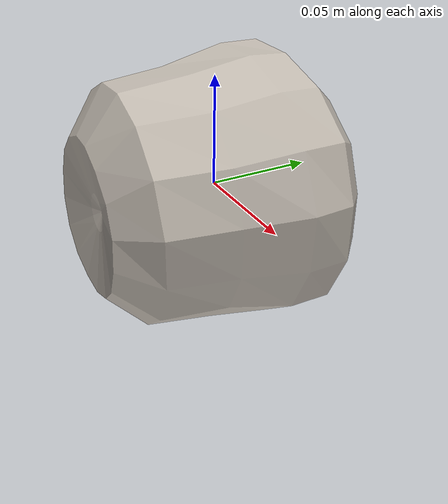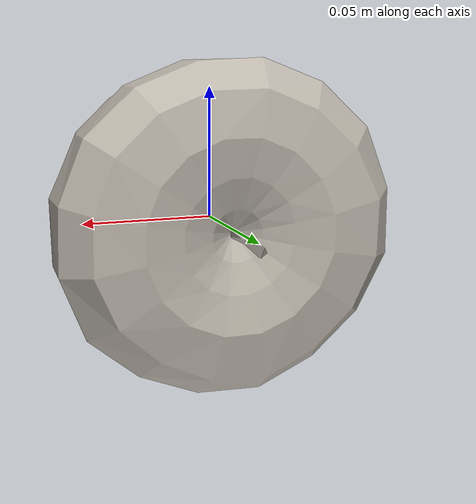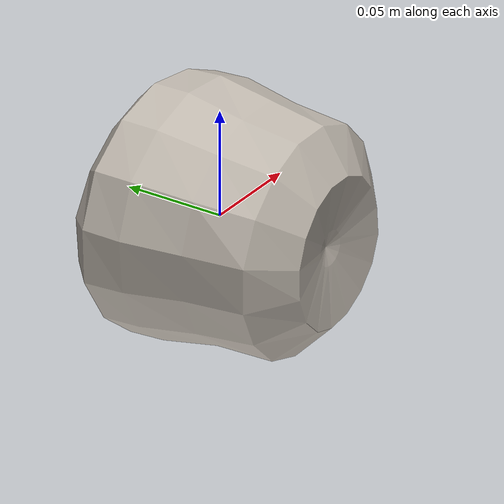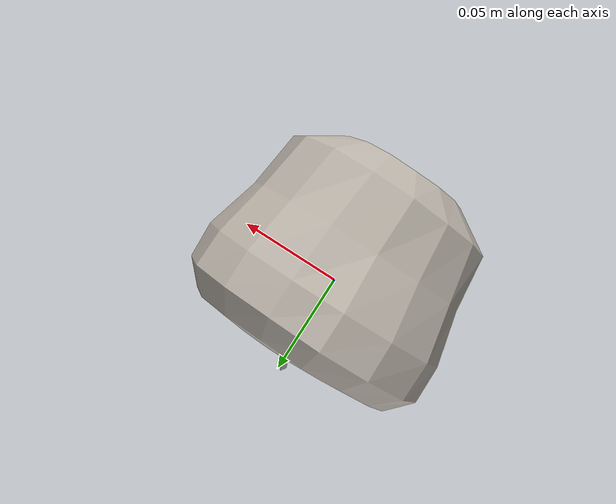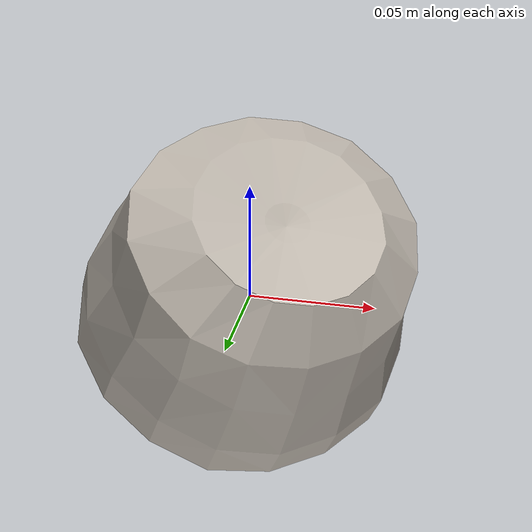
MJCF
<mujoco model="Apple_15">
  <compiler autolimits="true" boundmass="0.01" angle="radian"/>
  <default>
    <default class="/">
      <default class="__VISUAL_MJT__">
        <geom contype="0" conaffinity="0" group="0"/>
      </default>
      <default class="__STRUCTURAL_MJT__">
        <geom contype="8" conaffinity="15" group="4" friction="0.90000000000000002 0.90000000000000002 0.001" solref="0.025000000000000001 1" solimp="0.998 0.998 0.001"/>
      </default>
      <default class="__DYNAMIC_MJT__">
        <geom contype="1" conaffinity="15" group="4" friction="0.90000000000000002 0.90000000000000002 0.001" solref="0.025000000000000001 1" solimp="0.998 0.998 0.001"/>
      </default>
    </default>
  </default>
  <asset>
    <texture name="Apple1_Mat7" type="2d" file="Apple1_AlbedoTransparency7.png"/>
    <material name="material_Apple1_Mat7" class="/" texture="Apple1_Mat7" specular="0.5" shininess="0.5" rgba="1 1 1 1"/>
    <mesh name="Apple_15_apple_a15" class="/" file="Apple_15_apple_a15/Apple_15_apple_a15.obj" scale="1 1 1"/>
  </asset>
  <worldbody>
    <body name="Apple_15">
      <joint name="Apple_15_free" class="/" type="free" pos="0 0 0" axis="0 0 1" stiffness="0" range="0 0" armature="0" damping="0.10000000000000001" frictionloss="0"/>
      <body name="Apple_15_apple_a15" pos="-0 -0.0093600000000000003 0" quat="1 0 0 0">
        <geom name="Apple_15_apple_a15" class="__VISUAL_MJT__" type="mesh" material="material_Apple1_Mat7" shellinertia="false" mesh="Apple_15_apple_a15"/>
        <geom name="Apple_15_PrimitiveCollider_0" class="__DYNAMIC_MJT__" type="capsule" size="0.063709467649459839 0.0070717781782150269" rgba="0 1 0 1" pos="-0 0.0093567073345184326 0" quat="0.70710678118654757 0.70710678118654746 0 0"/>
      </body>
    </body>
  </worldbody>
</mujoco>
